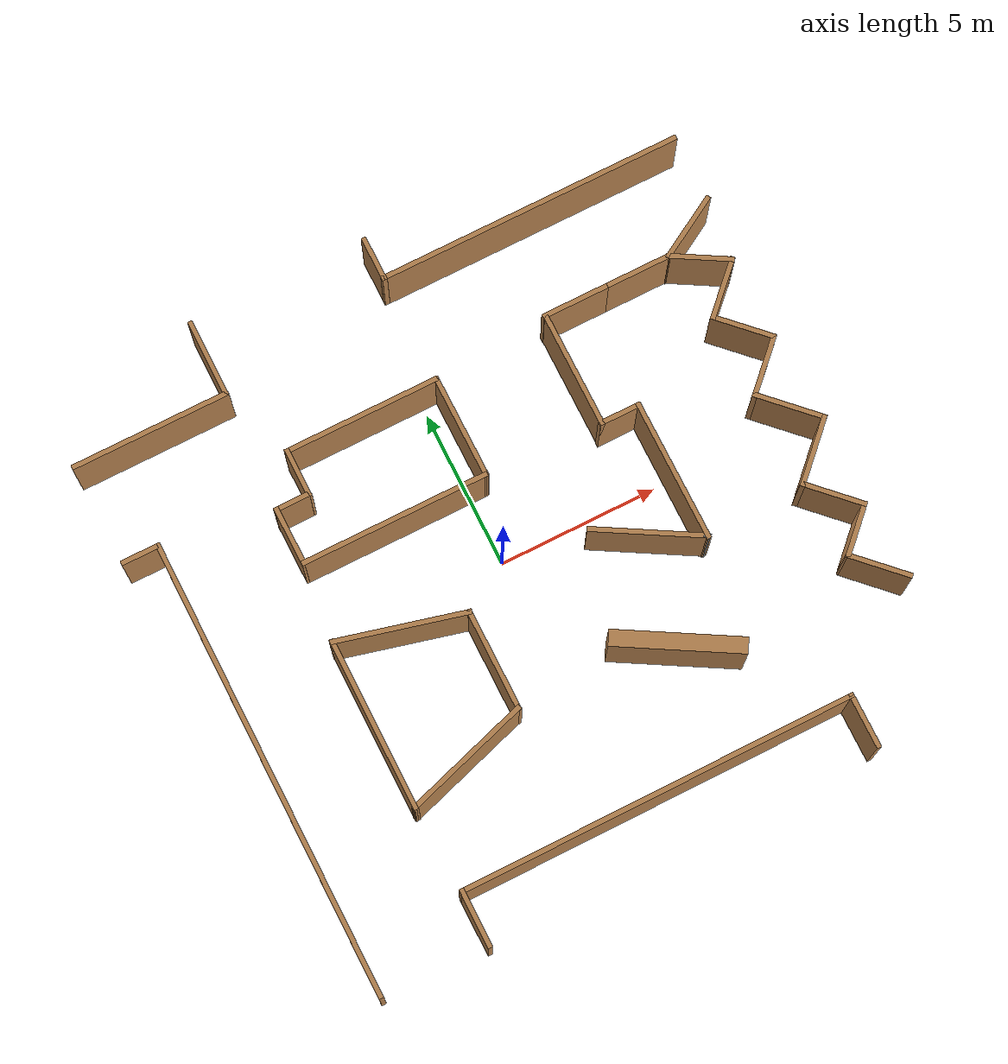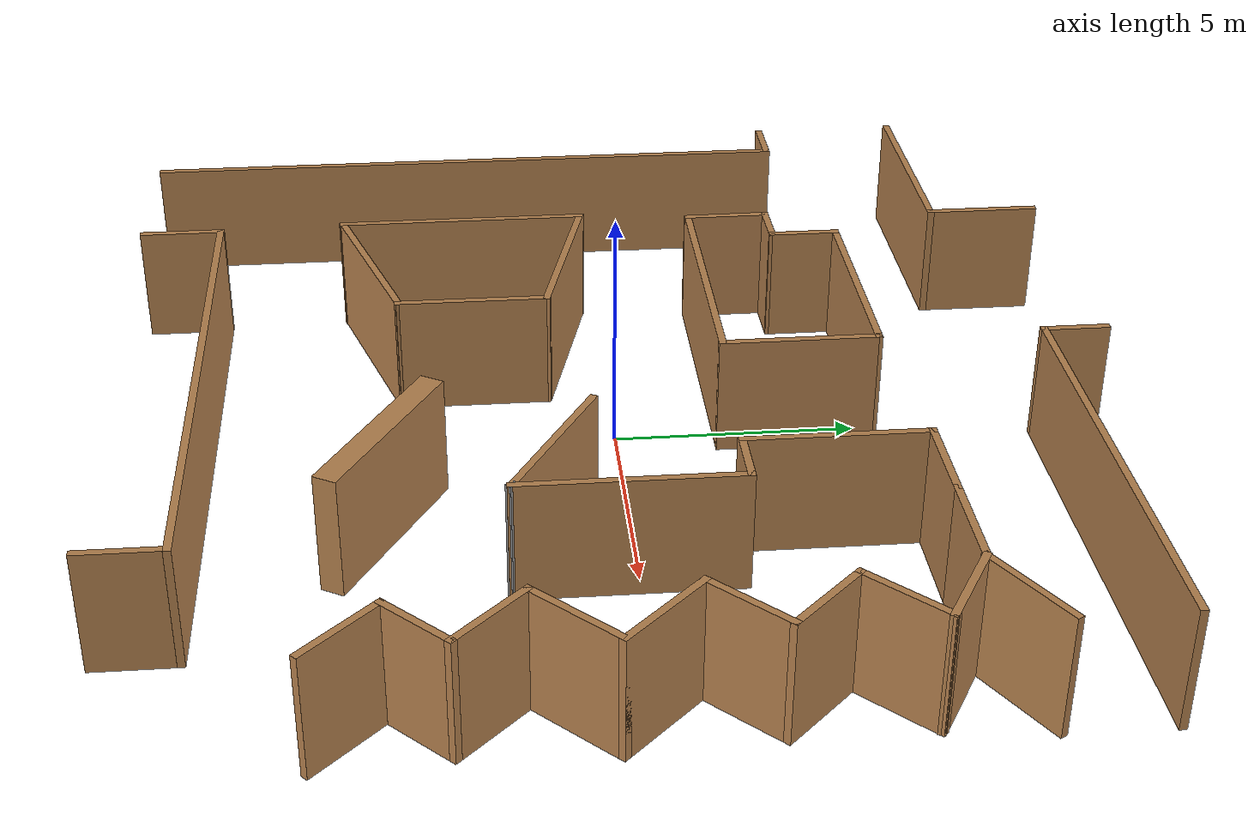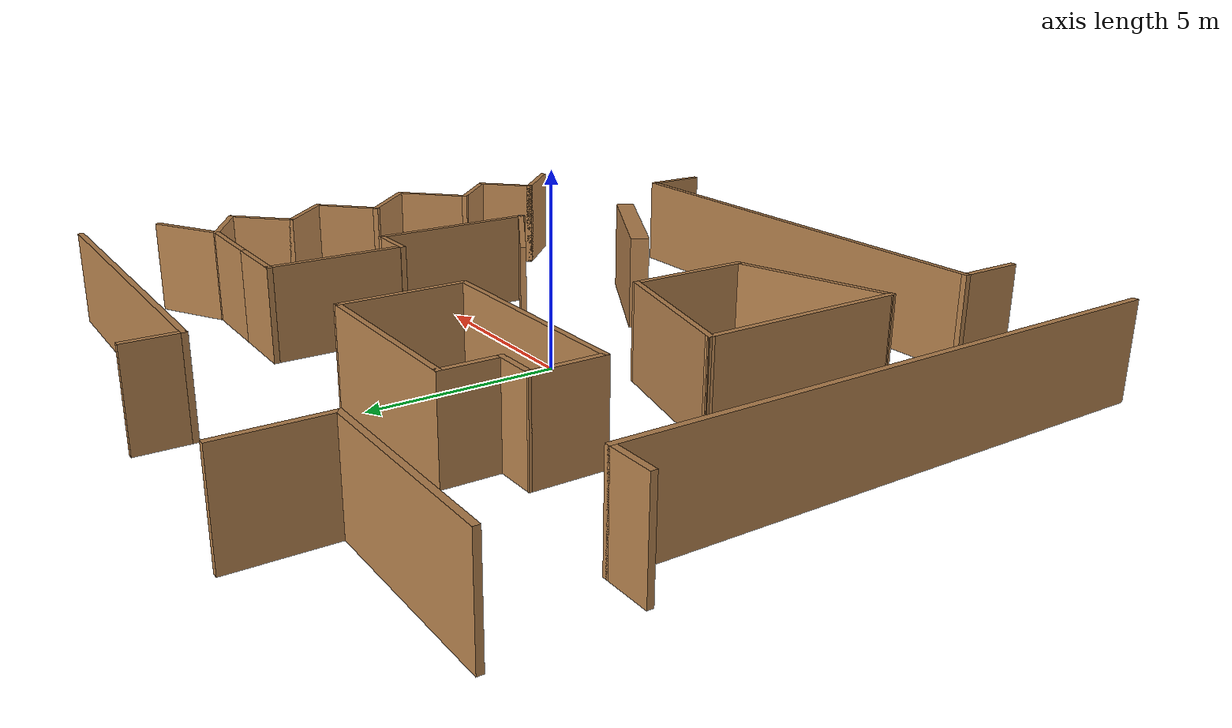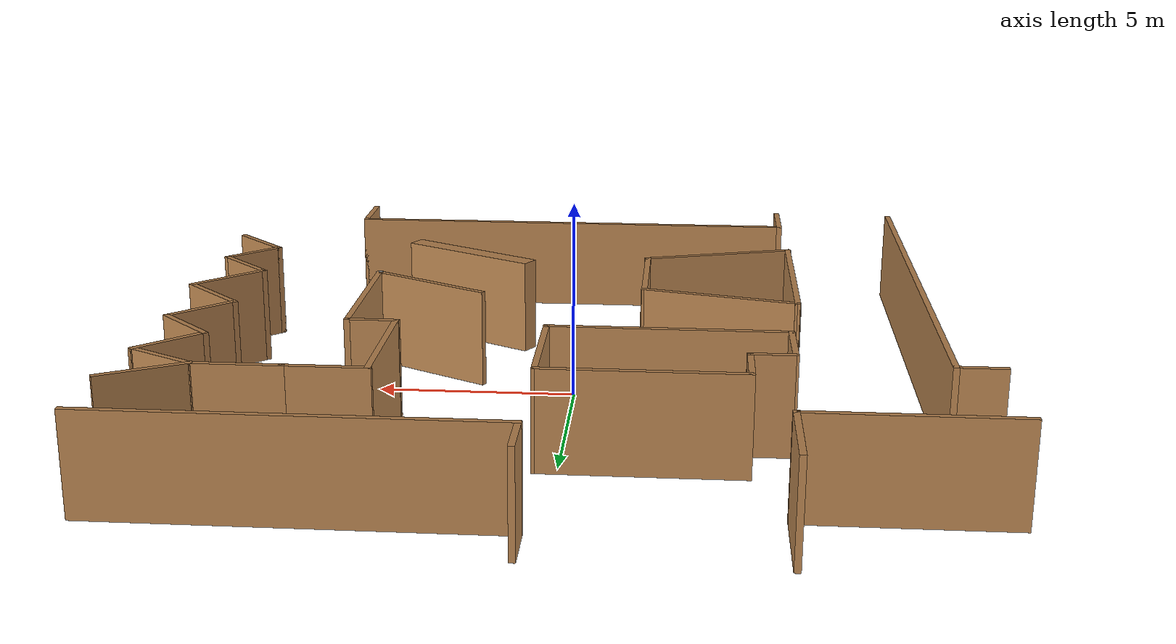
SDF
<?xml version='1.0'?>
<sdf version='1.6'>
  <model name='world5'>
    <pose frame=''>0.046394 0 0 0 -0 0</pose>
    <link name='Wall_11'>
      <collision name='Wall_11_Collision'>
        <geometry>
          <box>
            <size>1.25 0.15 2.5</size>
          </box>
        </geometry>
        <pose frame=''>0 0 1.25 0 -0 0</pose>
      </collision>
      <visual name='Wall_11_Visual'>
        <pose frame=''>0 0 1.25 0 -0 0</pose>
        <geometry>
          <box>
            <size>1.25 0.15 2.5</size>
          </box>
        </geometry>
        <material>
          <script>
            <uri>file://media/materials/scripts/gazebo.material</uri>
            <name>Gazebo/Wood</name>
          </script>
          <ambient>1 1 1 1</ambient>
        </material>
        <meta>
          <layer>0</layer>
        </meta>
      </visual>
      <pose frame=''>-9.41881 4.45535 0 0 -0 0</pose>
    </link>
    <link name='Wall_12'>
      <collision name='Wall_12_Collision'>
        <geometry>
          <box>
            <size>14.5 0.15 2.5</size>
          </box>
        </geometry>
        <pose frame=''>0 0 1.25 0 -0 0</pose>
      </collision>
      <visual name='Wall_12_Visual'>
        <pose frame=''>0 0 1.25 0 -0 0</pose>
        <geometry>
          <box>
            <size>14.5 0.15 2.5</size>
          </box>
        </geometry>
        <material>
          <script>
            <uri>file://media/materials/scripts/gazebo.material</uri>
            <name>Gazebo/Wood</name>
          </script>
          <ambient>1 1 1 1</ambient>
        </material>
        <meta>
          <layer>0</layer>
        </meta>
      </visual>
      <pose frame=''>-8.86881 -2.71965 0 0 -0 -1.5708</pose>
    </link>
    <link name='Wall_14'>
      <collision name='Wall_14_Collision'>
        <geometry>
          <box>
            <size>1.75 0.15 2.5</size>
          </box>
        </geometry>
        <pose frame=''>0 0 1.25 0 -0 0</pose>
      </collision>
      <visual name='Wall_14_Visual'>
        <pose frame=''>0 0 1.25 0 -0 0</pose>
        <geometry>
          <box>
            <size>1.75 0.15 2.5</size>
          </box>
        </geometry>
        <material>
          <script>
            <uri>file://media/materials/scripts/gazebo.material</uri>
            <name>Gazebo/Wood</name>
          </script>
          <ambient>1 1 1 1</ambient>
        </material>
        <meta>
          <layer>0</layer>
        </meta>
      </visual>
      <pose frame=''>6.82245 -9.11417 0 0 -0 1.5708</pose>
    </link>
    <link name='Wall_15'>
      <collision name='Wall_15_Collision'>
        <geometry>
          <box>
            <size>12.5 0.15 2.5</size>
          </box>
        </geometry>
        <pose frame=''>0 0 1.25 0 -0 0</pose>
      </collision>
      <visual name='Wall_15_Visual'>
        <pose frame=''>0 0 1.25 0 -0 0</pose>
        <geometry>
          <box>
            <size>12.5 0.15 2.5</size>
          </box>
        </geometry>
        <material>
          <script>
            <uri>file://media/materials/scripts/gazebo.material</uri>
            <name>Gazebo/Wood</name>
          </script>
          <ambient>1 1 1 1</ambient>
        </material>
        <meta>
          <layer>0</layer>
        </meta>
      </visual>
      <pose frame=''>0.647527 -8.31409 0 0 -0 3.14158</pose>
    </link>
    <link name='Wall_16'>
      <collision name='Wall_16_Collision'>
        <geometry>
          <box>
            <size>1.836 0.15 2.5</size>
          </box>
        </geometry>
        <pose frame=''>0 0 1.25 0 -0 0</pose>
      </collision>
      <visual name='Wall_16_Visual'>
        <pose frame=''>0 0 1.25 0 -0 0</pose>
        <geometry>
          <box>
            <size>1.836 0.15 2.5</size>
          </box>
        </geometry>
        <material>
          <script>
            <uri>file://media/materials/scripts/gazebo.material</uri>
            <name>Gazebo/Wood</name>
          </script>
          <ambient>1 1 1 1</ambient>
        </material>
        <meta>
          <layer>0</layer>
        </meta>
      </visual>
      <pose frame=''>-5.52739 -9.157 0 0 -0 -1.5708</pose>
    </link>
    <link name='Wall_18'>
      <collision name='Wall_18_Collision'>
        <geometry>
          <box>
            <size>2.25 0.15 2.5</size>
          </box>
        </geometry>
        <pose frame=''>0 0 1.25 0 -0 0</pose>
      </collision>
      <visual name='Wall_18_Visual'>
        <pose frame=''>0 0 1.25 0 -0 0</pose>
        <geometry>
          <box>
            <size>2.25 0.15 2.5</size>
          </box>
        </geometry>
        <material>
          <script>
            <uri>file://media/materials/scripts/gazebo.material</uri>
            <name>Gazebo/Wood</name>
          </script>
          <ambient>1 1 1 1</ambient>
        </material>
        <meta>
          <layer>0</layer>
        </meta>
      </visual>
      <pose frame=''>9.09413 6.0964 0 0 -0 -2.61799</pose>
    </link>
    <link name='Wall_19'>
      <collision name='Wall_19_Collision'>
        <geometry>
          <box>
            <size>2 0.15 2.5</size>
          </box>
        </geometry>
        <pose frame=''>0 0 1.25 0 -0 0</pose>
      </collision>
      <visual name='Wall_19_Visual'>
        <pose frame=''>0 0 1.25 0 -0 0</pose>
        <geometry>
          <box>
            <size>2 0.15 2.5</size>
          </box>
        </geometry>
        <material>
          <script>
            <uri>file://media/materials/scripts/gazebo.material</uri>
            <name>Gazebo/Wood</name>
          </script>
          <ambient>1 1 1 1</ambient>
        </material>
        <meta>
          <layer>0</layer>
        </meta>
      </visual>
      <pose frame=''>8.98588 5.1089 0 0 -0 -0.523599</pose>
    </link>
    <link name='Wall_20'>
      <collision name='Wall_20_Collision'>
        <geometry>
          <box>
            <size>2 0.15 2.5</size>
          </box>
        </geometry>
        <pose frame=''>0 0 1.25 0 -0 0</pose>
      </collision>
      <visual name='Wall_20_Visual'>
        <pose frame=''>0 0 1.25 0 -0 0</pose>
        <geometry>
          <box>
            <size>2 0.15 2.5</size>
          </box>
        </geometry>
        <material>
          <script>
            <uri>file://media/materials/scripts/gazebo.material</uri>
            <name>Gazebo/Wood</name>
          </script>
          <ambient>1 1 1 1</ambient>
        </material>
        <meta>
          <layer>0</layer>
        </meta>
      </visual>
      <pose frame=''>9.13287 3.99233 0 0 -0 -2.35619</pose>
    </link>
    <link name='Wall_21'>
      <collision name='Wall_21_Collision'>
        <geometry>
          <box>
            <size>2 0.15 2.5</size>
          </box>
        </geometry>
        <pose frame=''>0 0 1.25 0 -0 0</pose>
      </collision>
      <visual name='Wall_21_Visual'>
        <pose frame=''>0 0 1.25 0 -0 0</pose>
        <geometry>
          <box>
            <size>2 0.15 2.5</size>
          </box>
        </geometry>
        <material>
          <script>
            <uri>file://media/materials/scripts/gazebo.material</uri>
            <name>Gazebo/Wood</name>
          </script>
          <ambient>1 1 1 1</ambient>
        </material>
        <meta>
          <layer>0</layer>
        </meta>
      </visual>
      <pose frame=''>9.13287 2.68418 0 0 -0 -0.785398</pose>
    </link>
    <link name='Wall_22'>
      <collision name='Wall_22_Collision'>
        <geometry>
          <box>
            <size>2 0.15 2.5</size>
          </box>
        </geometry>
        <pose frame=''>0 0 1.25 0 -0 0</pose>
      </collision>
      <visual name='Wall_22_Visual'>
        <pose frame=''>0 0 1.25 0 -0 0</pose>
        <geometry>
          <box>
            <size>2 0.15 2.5</size>
          </box>
        </geometry>
        <material>
          <script>
            <uri>file://media/materials/scripts/gazebo.material</uri>
            <name>Gazebo/Wood</name>
          </script>
          <ambient>1 1 1 1</ambient>
        </material>
        <meta>
          <layer>0</layer>
        </meta>
      </visual>
      <pose frame=''>9.13287 1.37603 0 0 -0 -2.35619</pose>
    </link>
    <link name='Wall_23'>
      <collision name='Wall_23_Collision'>
        <geometry>
          <box>
            <size>2.25 0.15 2.5</size>
          </box>
        </geometry>
        <pose frame=''>0 0 1.25 0 -0 0</pose>
      </collision>
      <visual name='Wall_23_Visual'>
        <pose frame=''>0 0 1.25 0 -0 0</pose>
        <geometry>
          <box>
            <size>2.25 0.15 2.5</size>
          </box>
        </geometry>
        <material>
          <script>
            <uri>file://media/materials/scripts/gazebo.material</uri>
            <name>Gazebo/Wood</name>
          </script>
          <ambient>1 1 1 1</ambient>
        </material>
        <meta>
          <layer>0</layer>
        </meta>
      </visual>
      <pose frame=''>9.22126 -0.020504 0 0 -0 -0.785398</pose>
    </link>
    <link name='Wall_24'>
      <collision name='Wall_24_Collision'>
        <geometry>
          <box>
            <size>2.25 0.15 2.5</size>
          </box>
        </geometry>
        <pose frame=''>0 0 1.25 0 -0 0</pose>
      </collision>
      <visual name='Wall_24_Visual'>
        <pose frame=''>0 0 1.25 0 -0 0</pose>
        <geometry>
          <box>
            <size>2.25 0.15 2.5</size>
          </box>
        </geometry>
        <material>
          <script>
            <uri>file://media/materials/scripts/gazebo.material</uri>
            <name>Gazebo/Wood</name>
          </script>
          <ambient>1 1 1 1</ambient>
        </material>
        <meta>
          <layer>0</layer>
        </meta>
      </visual>
      <pose frame=''>9.22126 -1.50543 0 0 -0 -2.35619</pose>
    </link>
    <link name='Wall_25'>
      <collision name='Wall_25_Collision'>
        <geometry>
          <box>
            <size>2 0.15 2.5</size>
          </box>
        </geometry>
        <pose frame=''>0 0 1.25 0 -0 0</pose>
      </collision>
      <visual name='Wall_25_Visual'>
        <pose frame=''>0 0 1.25 0 -0 0</pose>
        <geometry>
          <box>
            <size>2 0.15 2.5</size>
          </box>
        </geometry>
        <material>
          <script>
            <uri>file://media/materials/scripts/gazebo.material</uri>
            <name>Gazebo/Wood</name>
          </script>
          <ambient>1 1 1 1</ambient>
        </material>
        <meta>
          <layer>0</layer>
        </meta>
      </visual>
      <pose frame=''>9.13287 -2.90196 0 0 -0 -0.785398</pose>
    </link>
    <link name='Wall_29'>
      <collision name='Wall_29_Collision'>
        <geometry>
          <box>
            <size>1.75 0.15 2.5</size>
          </box>
        </geometry>
        <pose frame=''>0 0 1.25 0 -0 0</pose>
      </collision>
      <visual name='Wall_29_Visual'>
        <pose frame=''>0 0 1.25 0 -0 0</pose>
        <geometry>
          <box>
            <size>1.75 0.15 2.5</size>
          </box>
        </geometry>
        <material>
          <script>
            <uri>file://media/materials/scripts/gazebo.material</uri>
            <name>Gazebo/Wood</name>
          </script>
          <ambient>1 1 1 1</ambient>
        </material>
        <meta>
          <layer>0</layer>
        </meta>
      </visual>
      <pose frame=''>9.22126 -4.12172 0 0 -0 -2.35619</pose>
    </link>
    <link name='Wall_30'>
      <collision name='Wall_30_Collision'>
        <geometry>
          <box>
            <size>2 0.15 2.5</size>
          </box>
        </geometry>
        <pose frame=''>0 0 1.25 0 -0 0</pose>
      </collision>
      <visual name='Wall_30_Visual'>
        <pose frame=''>0 0 1.25 0 -0 0</pose>
        <geometry>
          <box>
            <size>2 0.15 2.5</size>
          </box>
        </geometry>
        <material>
          <script>
            <uri>file://media/materials/scripts/gazebo.material</uri>
            <name>Gazebo/Wood</name>
          </script>
          <ambient>1 1 1 1</ambient>
        </material>
        <meta>
          <layer>0</layer>
        </meta>
      </visual>
      <pose frame=''>9.30965 -5.34148 0 0 -0 -0.785398</pose>
    </link>
    <link name='Wall_32'>
      <collision name='Wall_32_Collision'>
        <geometry>
          <box>
            <size>2.25 0.15 2.5</size>
          </box>
        </geometry>
        <pose frame=''>0 0 1.25 0 -0 0</pose>
      </collision>
      <visual name='Wall_32_Visual'>
        <pose frame=''>0 0 1.25 0 -0 0</pose>
        <geometry>
          <box>
            <size>2.25 0.15 2.5</size>
          </box>
        </geometry>
        <material>
          <script>
            <uri>file://media/materials/scripts/gazebo.material</uri>
            <name>Gazebo/Wood</name>
          </script>
          <ambient>1 1 1 1</ambient>
        </material>
        <meta>
          <layer>0</layer>
        </meta>
      </visual>
      <pose frame=''>7.1348 5.5714 0 0 -0 3.14159</pose>
    </link>
    <link name='Wall_33'>
      <collision name='Wall_33_Collision'>
        <geometry>
          <box>
            <size>2.10645 0.15 2.5</size>
          </box>
        </geometry>
        <pose frame=''>0 0 1.25 0 -0 0</pose>
      </collision>
      <visual name='Wall_33_Visual'>
        <pose frame=''>0 0 1.25 0 -0 0</pose>
        <geometry>
          <box>
            <size>2.10645 0.15 2.5</size>
          </box>
        </geometry>
        <material>
          <script>
            <uri>file://media/materials/scripts/gazebo.material</uri>
            <name>Gazebo/Wood</name>
          </script>
          <ambient>1 1 1 1</ambient>
        </material>
        <meta>
          <layer>0</layer>
        </meta>
      </visual>
      <pose frame=''>5.10658 5.5714 0 0 -0 3.14159</pose>
    </link>
    <link name='Wall_34'>
      <collision name='Wall_34_Collision'>
        <geometry>
          <box>
            <size>3.75 0.15 2.5</size>
          </box>
        </geometry>
        <pose frame=''>0 0 1.25 0 -0 0</pose>
      </collision>
      <visual name='Wall_34_Visual'>
        <pose frame=''>0 0 1.25 0 -0 0</pose>
        <geometry>
          <box>
            <size>3.75 0.15 2.5</size>
          </box>
        </geometry>
        <material>
          <script>
            <uri>file://media/materials/scripts/gazebo.material</uri>
            <name>Gazebo/Wood</name>
          </script>
          <ambient>1 1 1 1</ambient>
        </material>
        <meta>
          <layer>0</layer>
        </meta>
      </visual>
      <pose frame=''>4.1433 3.7714 0 0 -0 -1.5708</pose>
    </link>
    <link name='Wall_35'>
      <collision name='Wall_35_Collision'>
        <geometry>
          <box>
            <size>1.35645 0.15 2.5</size>
          </box>
        </geometry>
        <pose frame=''>0 0 1.25 0 -0 0</pose>
      </collision>
      <visual name='Wall_35_Visual'>
        <pose frame=''>0 0 1.25 0 -0 0</pose>
        <geometry>
          <box>
            <size>1.35645 0.15 2.5</size>
          </box>
        </geometry>
        <material>
          <script>
            <uri>file://media/materials/scripts/gazebo.material</uri>
            <name>Gazebo/Wood</name>
          </script>
          <ambient>1 1 1 1</ambient>
        </material>
        <meta>
          <layer>0</layer>
        </meta>
      </visual>
      <pose frame=''>4.73158 1.9714 0 0 -0 0</pose>
    </link>
    <link name='Wall_36'>
      <collision name='Wall_36_Collision'>
        <geometry>
          <box>
            <size>4.5 0.15 2.5</size>
          </box>
        </geometry>
        <pose frame=''>0 0 1.25 0 -0 0</pose>
      </collision>
      <visual name='Wall_36_Visual'>
        <pose frame=''>0 0 1.25 0 -0 0</pose>
        <geometry>
          <box>
            <size>4.5 0.15 2.5</size>
          </box>
        </geometry>
        <material>
          <script>
            <uri>file://media/materials/scripts/gazebo.material</uri>
            <name>Gazebo/Wood</name>
          </script>
          <ambient>1 1 1 1</ambient>
        </material>
        <meta>
          <layer>0</layer>
        </meta>
      </visual>
      <pose frame=''>5.3348 -0.203599 0 0 -0 -1.5708</pose>
    </link>
    <link name='Wall_37'>
      <collision name='Wall_37_Collision'>
        <geometry>
          <box>
            <size>0.200836 0.15 2.5</size>
          </box>
        </geometry>
        <pose frame=''>0 0 1.25 0 -0 0</pose>
      </collision>
      <visual name='Wall_37_Visual'>
        <pose frame=''>0 0 1.25 0 -0 0</pose>
        <geometry>
          <box>
            <size>0.200836 0.15 2.5</size>
          </box>
        </geometry>
        <material>
          <script>
            <uri>file://media/materials/scripts/gazebo.material</uri>
            <name>Gazebo/Grey</name>
          </script>
          <ambient>1 1 1 1</ambient>
        </material>
        <meta>
          <layer>0</layer>
        </meta>
      </visual>
      <pose frame=''>5.31769 -2.3598 0 0 -0 2.30926</pose>
    </link>
    <link name='Wall_41'>
      <collision name='Wall_41_Collision'>
        <geometry>
          <box>
            <size>1.565 0.15 2.5</size>
          </box>
        </geometry>
        <pose frame=''>0 0 1.25 0 -0 0</pose>
      </collision>
      <visual name='Wall_41_Visual'>
        <pose frame=''>0 0 1.25 0 -0 0</pose>
        <geometry>
          <box>
            <size>1.565 0.15 2.5</size>
          </box>
        </geometry>
        <material>
          <script>
            <uri>file://media/materials/scripts/gazebo.material</uri>
            <name>Gazebo/Wood</name>
          </script>
          <ambient>1 1 1 1</ambient>
        </material>
        <meta>
          <layer>0</layer>
        </meta>
      </visual>
      <pose frame=''>-4.3464 4.5925 0 0 -0 -1.5708</pose>
    </link>
    <link name='Wall_42'>
      <collision name='Wall_42_Collision'>
        <geometry>
          <box>
            <size>1.1801 0.15 2.5</size>
          </box>
        </geometry>
        <pose frame=''>0 0 1.25 0 -0 0</pose>
      </collision>
      <visual name='Wall_42_Visual'>
        <pose frame=''>0 0 1.25 0 -0 0</pose>
        <geometry>
          <box>
            <size>1.1801 0.15 2.5</size>
          </box>
        </geometry>
        <material>
          <script>
            <uri>file://media/materials/scripts/gazebo.material</uri>
            <name>Gazebo/Wood</name>
          </script>
          <ambient>1 1 1 1</ambient>
        </material>
        <meta>
          <layer>0</layer>
        </meta>
      </visual>
      <pose frame=''>-4.86143 3.88145 0 0 -0 -3.1347</pose>
    </link>
    <link name='Wall_43'>
      <collision name='Wall_43_Collision'>
        <geometry>
          <box>
            <size>1.90027 0.15 2.5</size>
          </box>
        </geometry>
        <pose frame=''>0 0 1.25 0 -0 0</pose>
      </collision>
      <visual name='Wall_43_Visual'>
        <pose frame=''>0 0 1.25 0 -0 0</pose>
        <geometry>
          <box>
            <size>1.90027 0.15 2.5</size>
          </box>
        </geometry>
        <material>
          <script>
            <uri>file://media/materials/scripts/gazebo.material</uri>
            <name>Gazebo/Wood</name>
          </script>
          <ambient>1 1 1 1</ambient>
        </material>
        <meta>
          <layer>0</layer>
        </meta>
      </visual>
      <pose frame=''>-5.37075 3.00278 0 0 -0 -1.56426</pose>
    </link>
    <link name='Wall_44'>
      <collision name='Wall_44_Collision'>
        <geometry>
          <box>
            <size>5.94154 0.15 2.5</size>
          </box>
        </geometry>
        <pose frame=''>0 0 1.25 0 -0 0</pose>
      </collision>
      <visual name='Wall_44_Visual'>
        <pose frame=''>0 0 1.25 0 -0 0</pose>
        <geometry>
          <box>
            <size>5.94154 0.15 2.5</size>
          </box>
        </geometry>
        <material>
          <script>
            <uri>file://media/materials/scripts/gazebo.material</uri>
            <name>Gazebo/Wood</name>
          </script>
          <ambient>1 1 1 1</ambient>
        </material>
        <meta>
          <layer>0</layer>
        </meta>
      </visual>
      <pose frame=''>-2.45784 2.12195 0 0 -0 -0.001974</pose>
    </link>
    <link name='Wall_45'>
      <collision name='Wall_45_Collision'>
        <geometry>
          <box>
            <size>3.33377 0.15 2.5</size>
          </box>
        </geometry>
        <pose frame=''>0 0 1.25 0 -0 0</pose>
      </collision>
      <visual name='Wall_45_Visual'>
        <pose frame=''>0 0 1.25 0 -0 0</pose>
        <geometry>
          <box>
            <size>3.33377 0.15 2.5</size>
          </box>
        </geometry>
        <material>
          <script>
            <uri>file://media/materials/scripts/gazebo.material</uri>
            <name>Gazebo/Wood</name>
          </script>
          <ambient>1 1 1 1</ambient>
        </material>
        <meta>
          <layer>0</layer>
        </meta>
      </visual>
      <pose frame=''>0.460416 3.70812 0 0 -0 1.57319</pose>
    </link>
    <link name='Wall_46'>
      <collision name='Wall_46_Collision'>
        <geometry>
          <box>
            <size>4.953 0.15 2.5</size>
          </box>
        </geometry>
        <pose frame=''>0 0 1.25 0 -0 0</pose>
      </collision>
      <visual name='Wall_46_Visual'>
        <pose frame=''>0 0 1.25 0 -0 0</pose>
        <geometry>
          <box>
            <size>4.953 0.15 2.5</size>
          </box>
        </geometry>
        <material>
          <script>
            <uri>file://media/materials/scripts/gazebo.material</uri>
            <name>Gazebo/Wood</name>
          </script>
          <ambient>1 1 1 1</ambient>
        </material>
        <meta>
          <layer>0</layer>
        </meta>
      </visual>
      <pose frame=''>-1.94489 5.3 0 0 -0 3.14159</pose>
    </link>
    <link name='Wall_48'>
      <collision name='Wall_48_Collision'>
        <geometry>
          <box>
            <size>5.45 0.15 2.5</size>
          </box>
        </geometry>
        <pose frame=''>0 0 1.25 0 -0 0</pose>
      </collision>
      <visual name='Wall_48_Visual'>
        <pose frame=''>0 0 1.25 0 -0 0</pose>
        <geometry>
          <box>
            <size>5.45 0.15 2.5</size>
          </box>
        </geometry>
        <material>
          <script>
            <uri>file://media/materials/scripts/gazebo.material</uri>
            <name>Gazebo/Wood</name>
          </script>
          <ambient>1 1 1 1</ambient>
        </material>
        <meta>
          <layer>0</layer>
        </meta>
      </visual>
      <pose frame=''>-5.64639 -2.95 0 0 -0 -1.5708</pose>
    </link>
    <link name='Wall_49'>
      <collision name='Wall_49_Collision'>
        <geometry>
          <box>
            <size>4.20816 0.15 2.5</size>
          </box>
        </geometry>
        <pose frame=''>0 0 1.25 0 -0 0</pose>
      </collision>
      <visual name='Wall_49_Visual'>
        <pose frame=''>0 0 1.25 0 -0 0</pose>
        <geometry>
          <box>
            <size>4.20816 0.15 2.5</size>
          </box>
        </geometry>
        <material>
          <script>
            <uri>file://media/materials/scripts/gazebo.material</uri>
            <name>Gazebo/Wood</name>
          </script>
          <ambient>1 1 1 1</ambient>
        </material>
        <meta>
          <layer>0</layer>
        </meta>
      </visual>
      <pose frame=''>-3.71092 -4.99083 0 0 -0 0.304924</pose>
    </link>
    <link name='Wall_5'>
      <collision name='Wall_5_Collision'>
        <geometry>
          <box>
            <size>2.5 0.15 2.5</size>
          </box>
        </geometry>
        <pose frame=''>0 0 1.25 0 -0 0</pose>
      </collision>
      <visual name='Wall_5_Visual'>
        <pose frame=''>0 0 1.25 0 -0 0</pose>
        <geometry>
          <box>
            <size>2.5 0.15 2.5</size>
          </box>
        </geometry>
        <material>
          <script>
            <uri>file://media/materials/scripts/gazebo.material</uri>
            <name>Gazebo/Wood</name>
          </script>
          <ambient>1 1 1 1</ambient>
        </material>
        <meta>
          <layer>0</layer>
        </meta>
      </visual>
      <pose frame=''>-5.18091 8.81593 0 0 -0 -1.5708</pose>
    </link>
    <link name='Wall_50'>
      <collision name='Wall_50_Collision'>
        <geometry>
          <box>
            <size>3.2583 0.15 2.5</size>
          </box>
        </geometry>
        <pose frame=''>0 0 1.25 0 -0 0</pose>
      </collision>
      <visual name='Wall_50_Visual'>
        <pose frame=''>0 0 1.25 0 -0 0</pose>
        <geometry>
          <box>
            <size>3.2583 0.15 2.5</size>
          </box>
        </geometry>
        <material>
          <script>
            <uri>file://media/materials/scripts/gazebo.material</uri>
            <name>Gazebo/Wood</name>
          </script>
          <ambient>1 1 1 1</ambient>
        </material>
        <meta>
          <layer>0</layer>
        </meta>
      </visual>
      <pose frame=''>-1.77542 -2.83615 0 0 -0 1.57078</pose>
    </link>
    <link name='Wall_51'>
      <collision name='Wall_51_Collision'>
        <geometry>
          <box>
            <size>4.14362 0.15 2.5</size>
          </box>
        </geometry>
        <pose frame=''>0 0 1.25 0 -0 0</pose>
      </collision>
      <visual name='Wall_51_Visual'>
        <pose frame=''>0 0 1.25 0 -0 0</pose>
        <geometry>
          <box>
            <size>4.14362 0.15 2.5</size>
          </box>
        </geometry>
        <material>
          <script>
            <uri>file://media/materials/scripts/gazebo.material</uri>
            <name>Gazebo/Wood</name>
          </script>
          <ambient>1 1 1 1</ambient>
        </material>
        <meta>
          <layer>0</layer>
        </meta>
      </visual>
      <pose frame=''>-3.71089 -0.791 0 0 -0 2.89315</pose>
    </link>
    <link name='Wall_57'>
      <collision name='Wall_57_Collision'>
        <geometry>
          <box>
            <size>3.99992 0.5 2.5</size>
          </box>
        </geometry>
        <pose frame=''>0 0 1.25 0 -0 0</pose>
      </collision>
      <visual name='Wall_57_Visual'>
        <pose frame=''>0 0 1.25 0 -0 0</pose>
        <geometry>
          <box>
            <size>3.99992 0.5 2.5</size>
          </box>
        </geometry>
        <material>
          <script>
            <uri>file://media/materials/scripts/gazebo.material</uri>
            <name>Gazebo/Wood</name>
          </script>
          <ambient>1 1 1 1</ambient>
        </material>
        <meta>
          <layer>0</layer>
        </meta>
      </visual>
      <pose frame=''>3.15338 -4.72337 0 0 -0 -0.523611</pose>
    </link>
    <link name='Wall_59'>
      <collision name='Wall_59_Collision'>
        <geometry>
          <box>
            <size>3.5 0.15 2.5</size>
          </box>
        </geometry>
        <pose frame=''>0 0 1.25 0 -0 0</pose>
      </collision>
      <visual name='Wall_59_Visual'>
        <pose frame=''>0 0 1.25 0 -0 0</pose>
        <geometry>
          <box>
            <size>3.5 0.15 2.5</size>
          </box>
        </geometry>
        <material>
          <script>
            <uri>file://media/materials/scripts/gazebo.material</uri>
            <name>Gazebo/Wood</name>
          </script>
          <ambient>1 1 1 1</ambient>
        </material>
        <meta>
          <layer>0</layer>
        </meta>
      </visual>
      <pose frame=''>3.84247 -1.50351 0 0 -0 2.61799</pose>
    </link>
    <link name='Wall_6'>
      <collision name='Wall_6_Collision'>
        <geometry>
          <box>
            <size>5 0.15 2.5</size>
          </box>
        </geometry>
        <pose frame=''>0 0 1.25 0 -0 0</pose>
      </collision>
      <visual name='Wall_6_Visual'>
        <pose frame=''>0 0 1.25 0 -0 0</pose>
        <geometry>
          <box>
            <size>5 0.15 2.5</size>
          </box>
        </geometry>
        <material>
          <script>
            <uri>file://media/materials/scripts/gazebo.material</uri>
            <name>Gazebo/Wood</name>
          </script>
          <ambient>1 1 1 1</ambient>
        </material>
        <meta>
          <layer>0</layer>
        </meta>
      </visual>
      <pose frame=''>-7.60591 7.64093 0 0 -0 3.14159</pose>
    </link>
    <link name='Wall_8'>
      <collision name='Wall_8_Collision'>
        <geometry>
          <box>
            <size>9.67937 0.15 2.5</size>
          </box>
        </geometry>
        <pose frame=''>0 0 1.25 0 -0 0</pose>
      </collision>
      <visual name='Wall_8_Visual'>
        <pose frame=''>0 0 1.25 0 -0 0</pose>
        <geometry>
          <box>
            <size>9.67937 0.15 2.5</size>
          </box>
        </geometry>
        <material>
          <script>
            <uri>file://media/materials/scripts/gazebo.material</uri>
            <name>Gazebo/Wood</name>
          </script>
          <ambient>1 1 1 1</ambient>
        </material>
        <meta>
          <layer>0</layer>
        </meta>
      </visual>
      <pose frame=''>5.21829 8.71408 0 0 -0 -3.14158</pose>
    </link>
    <link name='Wall_9'>
      <collision name='Wall_9_Collision'>
        <geometry>
          <box>
            <size>1.436 0.15 2.5</size>
          </box>
        </geometry>
        <pose frame=''>0 0 1.25 0 -0 0</pose>
      </collision>
      <visual name='Wall_9_Visual'>
        <pose frame=''>0 0 1.25 0 -0 0</pose>
        <geometry>
          <box>
            <size>1.436 0.15 2.5</size>
          </box>
        </geometry>
        <material>
          <script>
            <uri>file://media/materials/scripts/gazebo.material</uri>
            <name>Gazebo/Wood</name>
          </script>
          <ambient>1 1 1 1</ambient>
        </material>
        <meta>
          <layer>0</layer>
        </meta>
      </visual>
      <pose frame=''>0.453606 9.357 0 0 -0 1.5708</pose>
    </link>
    <static>1</static>
  </model>
</sdf>
